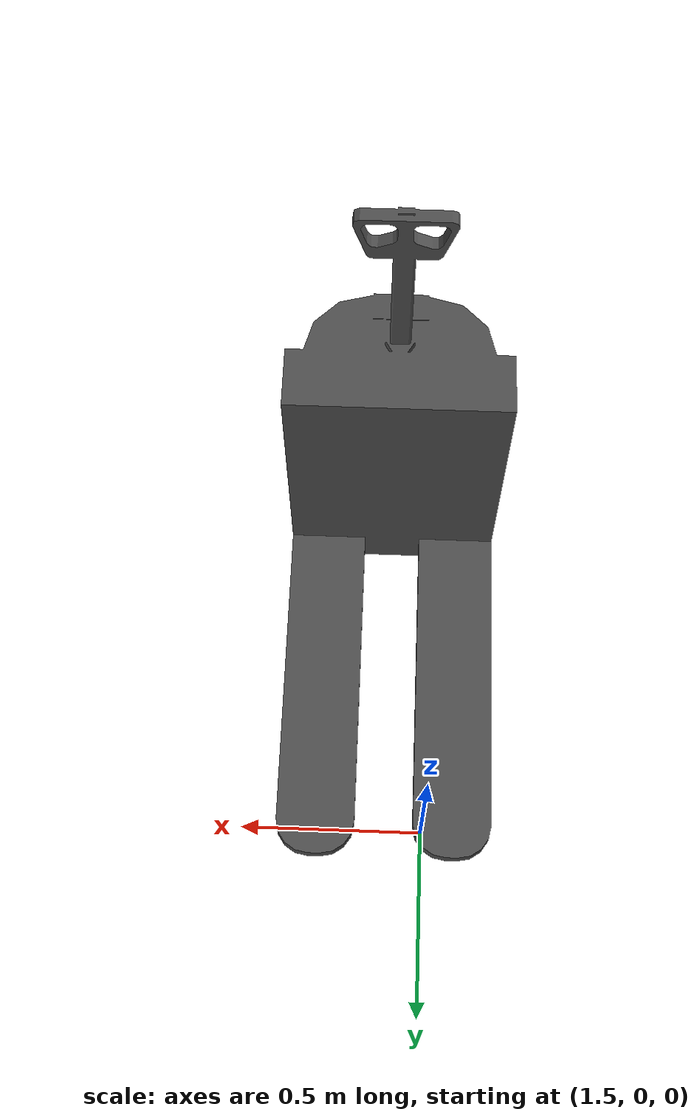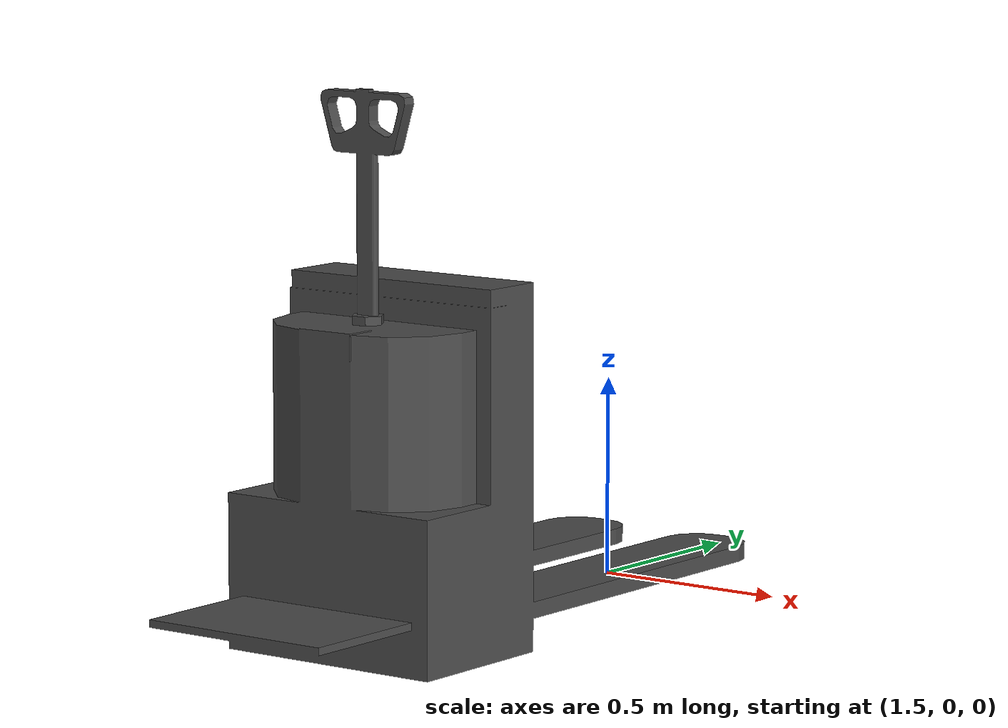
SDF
<?xml version="1.0" ?>
<sdf version="1.5">
  <model name="fork_lift">
    <static>true</static>
    <link name='defaultModel_0::custom_0'>
      <pose>0 0 0 0 0 0</pose>
      <gravity>1</gravity>
      <self_collide>0</self_collide>
      <kinematic>0</kinematic>
      <visual name='custom_0_visual'>
        <pose>0 0 0.13 0 0 0</pose>
        <geometry>
          <mesh>
            <uri>model://fork_lift/fork_lift.dae</uri>
            <scale>0.0006 0.0006 0.0006</scale>
          </mesh>
        </geometry>
        <material>
          <script>
            <uri>file://media/materials/scripts/gazebo.material</uri>
            <name>Gazebo/DarkGrey</name>
          </script>
        </material>
      </visual>
      <collision name='defaultModel_0::custom_0_collision'>
        <geometry>
          <mesh>
            <uri>model://fork_lift/fork_lift.dae</uri>
            <scale>0.0006 0.0006 0.0006</scale>
          </mesh>
        </geometry>
        <pose>0 0 0.13 0 0 0</pose>
      </collision>
    </link>
  </model>
</sdf>
